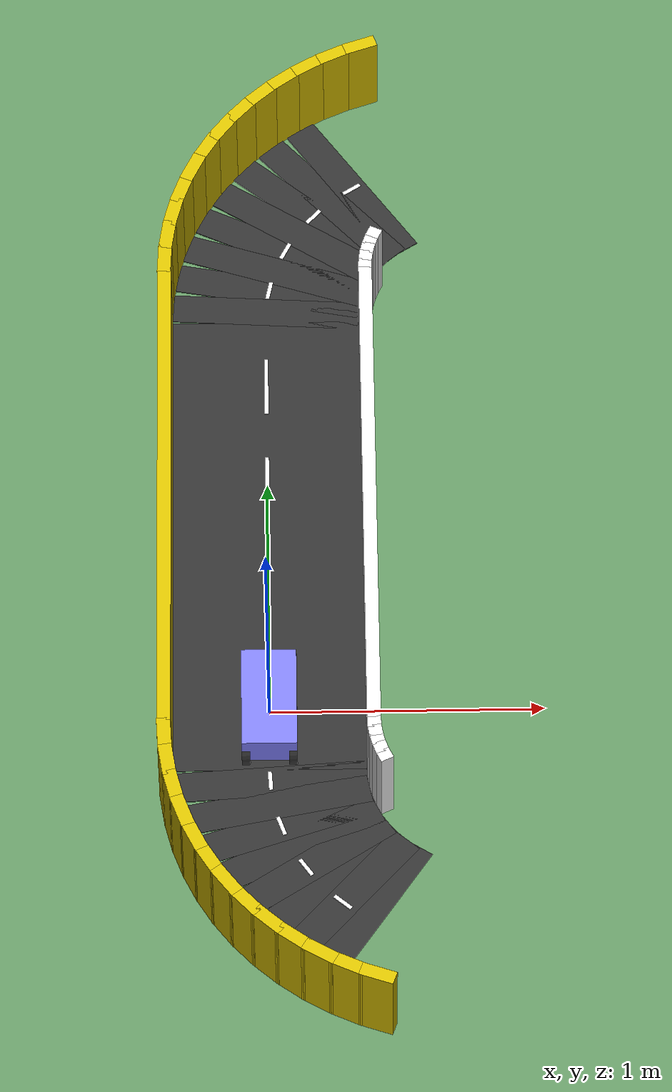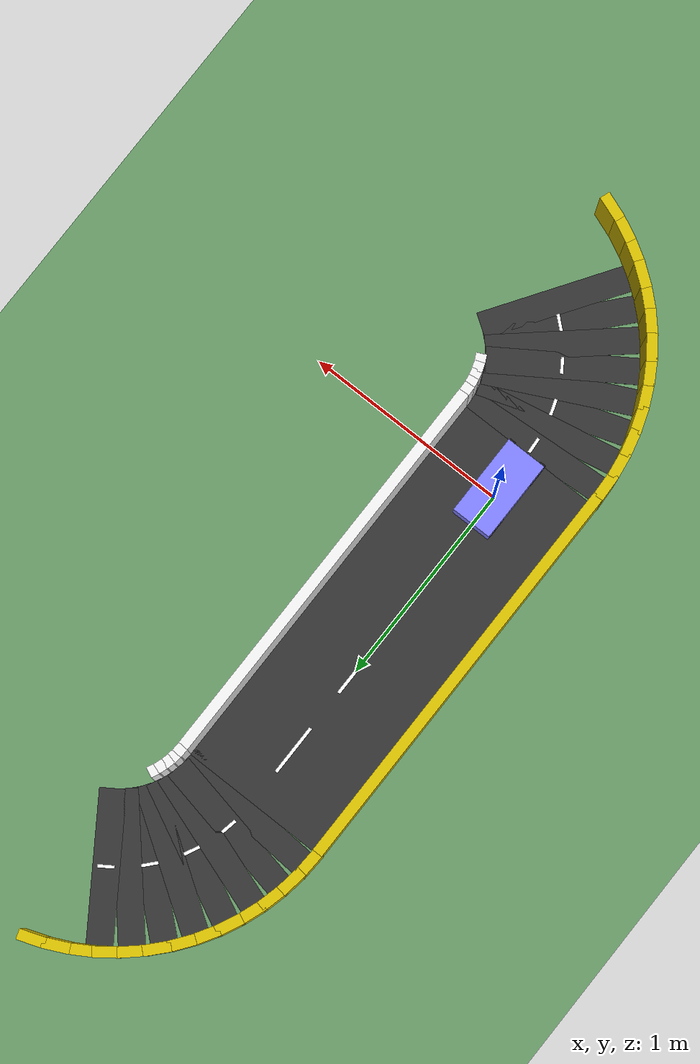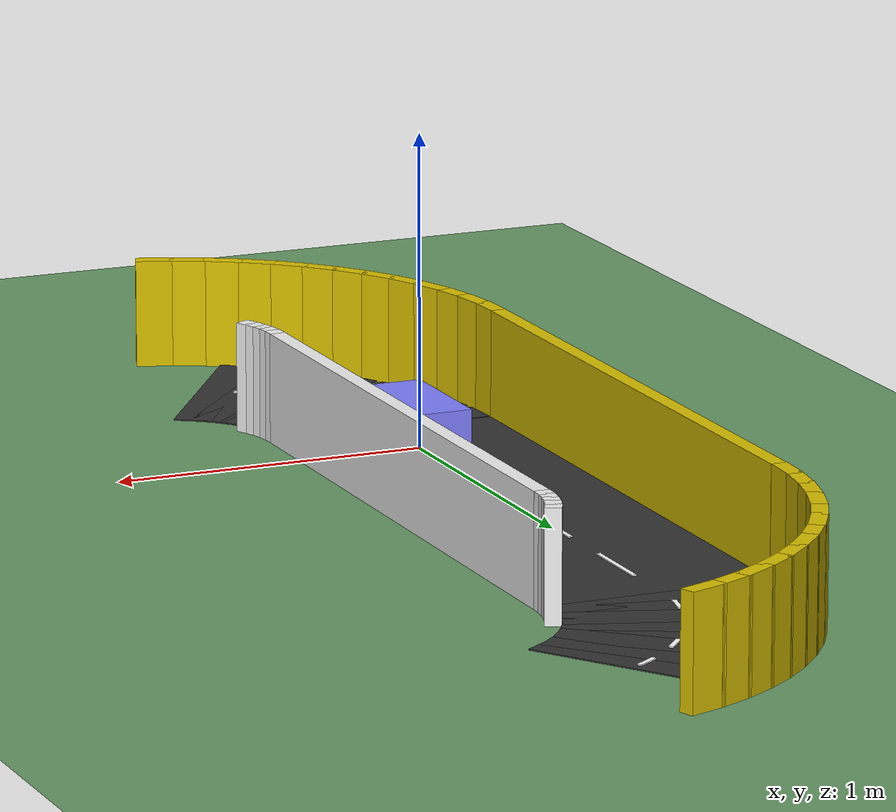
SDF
<sdf version="1.6">
 <world name="city_track">
  <model name="ground_plane">
   <static>true</static>
   <link name="link">
    <collision name="collision">
     <geometry><plane><normal>0 0 1</normal><size>20 20</size></plane></geometry>
     <surface><friction><ode><mu>50</mu><mu2>50</mu2></ode></friction></surface>
    </collision>
    <visual name="visual">
     <geometry><plane><normal>0 0 1</normal><size>20 20</size></plane></geometry>
     <material><ambient>0.4 0.6 0.4 1</ambient><diffuse>0.4 0.6 0.4 1</diffuse></material>
    </visual>
   </link>
  </model>
  <model name="road_left">
   <static>true</static>
   <pose>0.000000 0.750000 0.003000 0 0 0.000000</pose>
   <link name="link">
    <visual name="visual">
     <geometry><box><size>0.700000 2.000000 0.004000</size></box></geometry>
     <material><ambient>0.2 0.2 0.2 1</ambient><diffuse>0.2 0.2 0.2 1</diffuse></material>
    </visual>
   </link>
  </model>
  <model name="road_corner_tl_04">
   <static>true</static>
   <pose>0.333322 2.373602 0.003000 0 0 3.730641</pose>
   <link name="link">
    <visual name="visual">
     <geometry><box><size>0.122718 0.700000 0.004000</size></box></geometry>
     <material><ambient>0.2 0.2 0.2 1</ambient><diffuse>0.2 0.2 0.2 1</diffuse></material>
    </visual>
   </link>
  </model>
  <model name="road_corner_tl_05">
   <static>true</static>
   <pose>0.255491 2.313880 0.003000 0 0 3.861541</pose>
   <link name="link">
    <visual name="visual">
     <geometry><box><size>0.122718 0.700000 0.004000</size></box></geometry>
     <material><ambient>0.2 0.2 0.2 1</ambient><diffuse>0.2 0.2 0.2 1</diffuse></material>
    </visual>
   </link>
  </model>
  <model name="road_corner_tl_06">
   <static>true</static>
   <pose>0.186120 2.244509 0.003000 0 0 3.992441</pose>
   <link name="link">
    <visual name="visual">
     <geometry><box><size>0.122718 0.700000 0.004000</size></box></geometry>
     <material><ambient>0.2 0.2 0.2 1</ambient><diffuse>0.2 0.2 0.2 1</diffuse></material>
    </visual>
   </link>
  </model>
  <model name="road_corner_tl_07">
   <static>true</static>
   <pose>0.126398 2.166678 0.003000 0 0 4.123340</pose>
   <link name="link">
    <visual name="visual">
     <geometry><box><size>0.122718 0.700000 0.004000</size></box></geometry>
     <material><ambient>0.2 0.2 0.2 1</ambient><diffuse>0.2 0.2 0.2 1</diffuse></material>
    </visual>
   </link>
  </model>
  <model name="road_corner_tl_08">
   <static>true</static>
   <pose>0.077345 2.081717 0.003000 0 0 4.254240</pose>
   <link name="link">
    <visual name="visual">
     <geometry><box><size>0.122718 0.700000 0.004000</size></box></geometry>
     <material><ambient>0.2 0.2 0.2 1</ambient><diffuse>0.2 0.2 0.2 1</diffuse></material>
    </visual>
   </link>
  </model>
  <model name="road_corner_tl_09">
   <static>true</static>
   <pose>0.039802 1.991080 0.003000 0 0 4.385140</pose>
   <link name="link">
    <visual name="visual">
     <geometry><box><size>0.122718 0.700000 0.004000</size></box></geometry>
     <material><ambient>0.2 0.2 0.2 1</ambient><diffuse>0.2 0.2 0.2 1</diffuse></material>
    </visual>
   </link>
  </model>
  <model name="road_corner_tl_10">
   <static>true</static>
   <pose>0.014411 1.896318 0.003000 0 0 4.516039</pose>
   <link name="link">
    <visual name="visual">
     <geometry><box><size>0.122718 0.700000 0.004000</size></box></geometry>
     <material><ambient>0.2 0.2 0.2 1</ambient><diffuse>0.2 0.2 0.2 1</diffuse></material>
    </visual>
   </link>
  </model>
  <model name="road_corner_tl_11">
   <static>true</static>
   <pose>0.001606 1.799052 0.003000 0 0 4.646939</pose>
   <link name="link">
    <visual name="visual">
     <geometry><box><size>0.122718 0.700000 0.004000</size></box></geometry>
     <material><ambient>0.2 0.2 0.2 1</ambient><diffuse>0.2 0.2 0.2 1</diffuse></material>
    </visual>
   </link>
  </model>
  <model name="road_corner_bl_00">
   <static>true</static>
   <pose>0.001606 -0.299052 0.003000 0 0 4.777839</pose>
   <link name="link">
    <visual name="visual">
     <geometry><box><size>0.122718 0.700000 0.004000</size></box></geometry>
     <material><ambient>0.2 0.2 0.2 1</ambient><diffuse>0.2 0.2 0.2 1</diffuse></material>
    </visual>
   </link>
  </model>
  <model name="road_corner_bl_01">
   <static>true</static>
   <pose>0.014411 -0.396318 0.003000 0 0 4.908739</pose>
   <link name="link">
    <visual name="visual">
     <geometry><box><size>0.122718 0.700000 0.004000</size></box></geometry>
     <material><ambient>0.2 0.2 0.2 1</ambient><diffuse>0.2 0.2 0.2 1</diffuse></material>
    </visual>
   </link>
  </model>
  <model name="road_corner_bl_02">
   <static>true</static>
   <pose>0.039802 -0.491080 0.003000 0 0 5.039638</pose>
   <link name="link">
    <visual name="visual">
     <geometry><box><size>0.122718 0.700000 0.004000</size></box></geometry>
     <material><ambient>0.2 0.2 0.2 1</ambient><diffuse>0.2 0.2 0.2 1</diffuse></material>
    </visual>
   </link>
  </model>
  <model name="road_corner_bl_03">
   <static>true</static>
   <pose>0.077345 -0.581717 0.003000 0 0 5.170538</pose>
   <link name="link">
    <visual name="visual">
     <geometry><box><size>0.122718 0.700000 0.004000</size></box></geometry>
     <material><ambient>0.2 0.2 0.2 1</ambient><diffuse>0.2 0.2 0.2 1</diffuse></material>
    </visual>
   </link>
  </model>
  <model name="road_corner_bl_04">
   <static>true</static>
   <pose>0.126398 -0.666678 0.003000 0 0 5.301438</pose>
   <link name="link">
    <visual name="visual">
     <geometry><box><size>0.122718 0.700000 0.004000</size></box></geometry>
     <material><ambient>0.2 0.2 0.2 1</ambient><diffuse>0.2 0.2 0.2 1</diffuse></material>
    </visual>
   </link>
  </model>
  <model name="road_corner_bl_05">
   <static>true</static>
   <pose>0.186120 -0.744509 0.003000 0 0 5.432337</pose>
   <link name="link">
    <visual name="visual">
     <geometry><box><size>0.122718 0.700000 0.004000</size></box></geometry>
     <material><ambient>0.2 0.2 0.2 1</ambient><diffuse>0.2 0.2 0.2 1</diffuse></material>
    </visual>
   </link>
  </model>
  <model name="road_corner_bl_06">
   <static>true</static>
   <pose>0.255491 -0.813880 0.003000 0 0 5.563237</pose>
   <link name="link">
    <visual name="visual">
     <geometry><box><size>0.122718 0.700000 0.004000</size></box></geometry>
     <material><ambient>0.2 0.2 0.2 1</ambient><diffuse>0.2 0.2 0.2 1</diffuse></material>
    </visual>
   </link>
  </model>
  <model name="road_corner_bl_07">
   <static>true</static>
   <pose>0.333322 -0.873602 0.003000 0 0 5.694137</pose>
   <link name="link">
    <visual name="visual">
     <geometry><box><size>0.122718 0.700000 0.004000</size></box></geometry>
     <material><ambient>0.2 0.2 0.2 1</ambient><diffuse>0.2 0.2 0.2 1</diffuse></material>
    </visual>
   </link>
  </model>
  <model name="centerline_left_0">
   <static>true</static>
   <pose>0.000000 0.050000 0.008000 0 0 0.000000</pose>
   <link name="link">
    <visual name="visual">
     <geometry><box><size>0.015000 0.250000 0.004000</size></box></geometry>
     <material><ambient>1 1 1 1</ambient><diffuse>1 1 1 1</diffuse></material>
    </visual>
   </link>
  </model>
  <model name="centerline_left_1">
   <static>true</static>
   <pose>0.000000 0.500000 0.008000 0 0 0.000000</pose>
   <link name="link">
    <visual name="visual">
     <geometry><box><size>0.015000 0.250000 0.004000</size></box></geometry>
     <material><ambient>1 1 1 1</ambient><diffuse>1 1 1 1</diffuse></material>
    </visual>
   </link>
  </model>
  <model name="centerline_left_2">
   <static>true</static>
   <pose>0.000000 1.000000 0.008000 0 0 0.000000</pose>
   <link name="link">
    <visual name="visual">
     <geometry><box><size>0.015000 0.250000 0.004000</size></box></geometry>
     <material><ambient>1 1 1 1</ambient><diffuse>1 1 1 1</diffuse></material>
    </visual>
   </link>
  </model>
  <model name="centerline_left_3">
   <static>true</static>
   <pose>0.000000 1.450000 0.008000 0 0 0.000000</pose>
   <link name="link">
    <visual name="visual">
     <geometry><box><size>0.015000 0.250000 0.004000</size></box></geometry>
     <material><ambient>1 1 1 1</ambient><diffuse>1 1 1 1</diffuse></material>
    </visual>
   </link>
  </model>
  <model name="centerline_road_corner_tl_04">
   <static>true</static>
   <pose>0.333322 2.373602 0.010000 0 0 3.730641</pose>
   <link name="link">
    <visual name="visual">
     <geometry><box><size>0.078540 0.015000 0.004000</size></box></geometry>
     <material><ambient>1 1 1 1</ambient><diffuse>1 1 1 1</diffuse></material>
    </visual>
   </link>
  </model>
  <model name="centerline_road_corner_tl_06">
   <static>true</static>
   <pose>0.186120 2.244509 0.010000 0 0 3.992441</pose>
   <link name="link">
    <visual name="visual">
     <geometry><box><size>0.078540 0.015000 0.004000</size></box></geometry>
     <material><ambient>1 1 1 1</ambient><diffuse>1 1 1 1</diffuse></material>
    </visual>
   </link>
  </model>
  <model name="centerline_road_corner_tl_08">
   <static>true</static>
   <pose>0.077345 2.081717 0.010000 0 0 4.254240</pose>
   <link name="link">
    <visual name="visual">
     <geometry><box><size>0.078540 0.015000 0.004000</size></box></geometry>
     <material><ambient>1 1 1 1</ambient><diffuse>1 1 1 1</diffuse></material>
    </visual>
   </link>
  </model>
  <model name="centerline_road_corner_tl_10">
   <static>true</static>
   <pose>0.014411 1.896318 0.010000 0 0 4.516039</pose>
   <link name="link">
    <visual name="visual">
     <geometry><box><size>0.078540 0.015000 0.004000</size></box></geometry>
     <material><ambient>1 1 1 1</ambient><diffuse>1 1 1 1</diffuse></material>
    </visual>
   </link>
  </model>
  <model name="centerline_road_corner_bl_00">
   <static>true</static>
   <pose>0.001606 -0.299052 0.010000 0 0 4.777839</pose>
   <link name="link">
    <visual name="visual">
     <geometry><box><size>0.078540 0.015000 0.004000</size></box></geometry>
     <material><ambient>1 1 1 1</ambient><diffuse>1 1 1 1</diffuse></material>
    </visual>
   </link>
  </model>
  <model name="centerline_road_corner_bl_02">
   <static>true</static>
   <pose>0.039802 -0.491080 0.010000 0 0 5.039638</pose>
   <link name="link">
    <visual name="visual">
     <geometry><box><size>0.078540 0.015000 0.004000</size></box></geometry>
     <material><ambient>1 1 1 1</ambient><diffuse>1 1 1 1</diffuse></material>
    </visual>
   </link>
  </model>
  <model name="centerline_road_corner_bl_04">
   <static>true</static>
   <pose>0.126398 -0.666678 0.010000 0 0 5.301438</pose>
   <link name="link">
    <visual name="visual">
     <geometry><box><size>0.078540 0.015000 0.004000</size></box></geometry>
     <material><ambient>1 1 1 1</ambient><diffuse>1 1 1 1</diffuse></material>
    </visual>
   </link>
  </model>
  <model name="centerline_road_corner_bl_06">
   <static>true</static>
   <pose>0.255491 -0.813880 0.010000 0 0 5.563237</pose>
   <link name="link">
    <visual name="visual">
     <geometry><box><size>0.078540 0.015000 0.004000</size></box></geometry>
     <material><ambient>1 1 1 1</ambient><diffuse>1 1 1 1</diffuse></material>
    </visual>
   </link>
  </model>
  <model name="outer_wall_left">
   <static>true</static>
   <pose>-0.375000 0.750000 0.175000 0 0 0.000000</pose>
   <link name="link">
    <collision name="collision">
     <geometry><box><size>0.050000 2.000000 0.350000</size></box></geometry>
    </collision>
    <visual name="visual">
     <geometry><box><size>0.050000 2.000000 0.350000</size></box></geometry>
     <material><ambient>0.85 0.75 0.0 1</ambient><diffuse>0.85 0.75 0.0 1</diffuse></material>
    </visual>
   </link>
  </model>
  <model name="inner_wall_left">
   <static>true</static>
   <pose>0.375000 0.750000 0.175000 0 0 0.000000</pose>
   <link name="link">
    <collision name="collision">
     <geometry><box><size>0.050000 2.000000 0.350000</size></box></geometry>
    </collision>
    <visual name="visual">
     <geometry><box><size>0.050000 2.000000 0.350000</size></box></geometry>
     <material><ambient>0.95 0.95 0.95 1</ambient><diffuse>0.95 0.95 0.95 1</diffuse></material>
    </visual>
   </link>
  </model>
  <model name="outer_wall_corner_tl_03">
   <static>true</static>
   <pose>0.370999 2.809237 0.175000 0 0 3.485204</pose>
   <link name="link">
    <collision name="collision">
     <geometry><box><size>0.127014 0.050000 0.350000</size></box></geometry>
    </collision>
    <visual name="visual">
     <geometry><box><size>0.127014 0.050000 0.350000</size></box></geometry>
     <material><ambient>0.85 0.75 0.0 1</ambient><diffuse>0.85 0.75 0.0 1</diffuse></material>
    </visual>
   </link>
  </model>
  <model name="outer_wall_corner_tl_04">
   <static>true</static>
   <pose>0.269000 2.766988 0.175000 0 0 3.583379</pose>
   <link name="link">
    <collision name="collision">
     <geometry><box><size>0.127014 0.050000 0.350000</size></box></geometry>
    </collision>
    <visual name="visual">
     <geometry><box><size>0.127014 0.050000 0.350000</size></box></geometry>
     <material><ambient>0.85 0.75 0.0 1</ambient><diffuse>0.85 0.75 0.0 1</diffuse></material>
    </visual>
   </link>
  </model>
  <model name="outer_wall_corner_tl_05">
   <static>true</static>
   <pose>0.171635 2.714945 0.175000 0 0 3.681554</pose>
   <link name="link">
    <collision name="collision">
     <geometry><box><size>0.127014 0.050000 0.350000</size></box></geometry>
    </collision>
    <visual name="visual">
     <geometry><box><size>0.127014 0.050000 0.350000</size></box></geometry>
     <material><ambient>0.85 0.75 0.0 1</ambient><diffuse>0.85 0.75 0.0 1</diffuse></material>
    </visual>
   </link>
  </model>
  <model name="outer_wall_corner_tl_06">
   <static>true</static>
   <pose>0.079838 2.653608 0.175000 0 0 3.779729</pose>
   <link name="link">
    <collision name="collision">
     <geometry><box><size>0.127014 0.050000 0.350000</size></box></geometry>
    </collision>
    <visual name="visual">
     <geometry><box><size>0.127014 0.050000 0.350000</size></box></geometry>
     <material><ambient>0.85 0.75 0.0 1</ambient><diffuse>0.85 0.75 0.0 1</diffuse></material>
    </visual>
   </link>
  </model>
  <model name="outer_wall_corner_tl_07">
   <static>true</static>
   <pose>-0.005504 2.583570 0.175000 0 0 3.877903</pose>
   <link name="link">
    <collision name="collision">
     <geometry><box><size>0.127014 0.050000 0.350000</size></box></geometry>
    </collision>
    <visual name="visual">
     <geometry><box><size>0.127014 0.050000 0.350000</size></box></geometry>
     <material><ambient>0.85 0.75 0.0 1</ambient><diffuse>0.85 0.75 0.0 1</diffuse></material>
    </visual>
   </link>
  </model>
  <model name="outer_wall_corner_tl_08">
   <static>true</static>
   <pose>-0.083570 2.505504 0.175000 0 0 3.976078</pose>
   <link name="link">
    <collision name="collision">
     <geometry><box><size>0.127014 0.050000 0.350000</size></box></geometry>
    </collision>
    <visual name="visual">
     <geometry><box><size>0.127014 0.050000 0.350000</size></box></geometry>
     <material><ambient>0.85 0.75 0.0 1</ambient><diffuse>0.85 0.75 0.0 1</diffuse></material>
    </visual>
   </link>
  </model>
  <model name="outer_wall_corner_tl_09">
   <static>true</static>
   <pose>-0.153608 2.420162 0.175000 0 0 4.074253</pose>
   <link name="link">
    <collision name="collision">
     <geometry><box><size>0.127014 0.050000 0.350000</size></box></geometry>
    </collision>
    <visual name="visual">
     <geometry><box><size>0.127014 0.050000 0.350000</size></box></geometry>
     <material><ambient>0.85 0.75 0.0 1</ambient><diffuse>0.85 0.75 0.0 1</diffuse></material>
    </visual>
   </link>
  </model>
  <model name="outer_wall_corner_tl_10">
   <static>true</static>
   <pose>-0.214945 2.328365 0.175000 0 0 4.172428</pose>
   <link name="link">
    <collision name="collision">
     <geometry><box><size>0.127014 0.050000 0.350000</size></box></geometry>
    </collision>
    <visual name="visual">
     <geometry><box><size>0.127014 0.050000 0.350000</size></box></geometry>
     <material><ambient>0.85 0.75 0.0 1</ambient><diffuse>0.85 0.75 0.0 1</diffuse></material>
    </visual>
   </link>
  </model>
  <model name="outer_wall_corner_tl_11">
   <static>true</static>
   <pose>-0.266988 2.231000 0.175000 0 0 4.270603</pose>
   <link name="link">
    <collision name="collision">
     <geometry><box><size>0.127014 0.050000 0.350000</size></box></geometry>
    </collision>
    <visual name="visual">
     <geometry><box><size>0.127014 0.050000 0.350000</size></box></geometry>
     <material><ambient>0.85 0.75 0.0 1</ambient><diffuse>0.85 0.75 0.0 1</diffuse></material>
    </visual>
   </link>
  </model>
  <model name="inner_wall_corner_tl_11">
   <static>true</static>
   <pose>0.411004 1.910333 0.175000 0 0 4.270603</pose>
   <link name="link">
    <collision name="collision">
     <geometry><box><size>0.044179 0.050000 0.350000</size></box></geometry>
    </collision>
    <visual name="visual">
     <geometry><box><size>0.044179 0.050000 0.350000</size></box></geometry>
     <material><ambient>0.95 0.95 0.95 1</ambient><diffuse>0.95 0.95 0.95 1</diffuse></material>
    </visual>
   </link>
  </model>
  <model name="outer_wall_corner_tl_12">
   <static>true</static>
   <pose>-0.309237 2.129001 0.175000 0 0 4.368777</pose>
   <link name="link">
    <collision name="collision">
     <geometry><box><size>0.127014 0.050000 0.350000</size></box></geometry>
    </collision>
    <visual name="visual">
     <geometry><box><size>0.127014 0.050000 0.350000</size></box></geometry>
     <material><ambient>0.85 0.75 0.0 1</ambient><diffuse>0.85 0.75 0.0 1</diffuse></material>
    </visual>
   </link>
  </model>
  <model name="inner_wall_corner_tl_12">
   <static>true</static>
   <pose>0.396921 1.876334 0.175000 0 0 4.368777</pose>
   <link name="link">
    <collision name="collision">
     <geometry><box><size>0.044179 0.050000 0.350000</size></box></geometry>
    </collision>
    <visual name="visual">
     <geometry><box><size>0.044179 0.050000 0.350000</size></box></geometry>
     <material><ambient>0.95 0.95 0.95 1</ambient><diffuse>0.95 0.95 0.95 1</diffuse></material>
    </visual>
   </link>
  </model>
  <model name="outer_wall_corner_tl_13">
   <static>true</static>
   <pose>-0.341285 2.023353 0.175000 0 0 4.466952</pose>
   <link name="link">
    <collision name="collision">
     <geometry><box><size>0.127014 0.050000 0.350000</size></box></geometry>
    </collision>
    <visual name="visual">
     <geometry><box><size>0.127014 0.050000 0.350000</size></box></geometry>
     <material><ambient>0.85 0.75 0.0 1</ambient><diffuse>0.85 0.75 0.0 1</diffuse></material>
    </visual>
   </link>
  </model>
  <model name="inner_wall_corner_tl_13">
   <static>true</static>
   <pose>0.386238 1.841118 0.175000 0 0 4.466952</pose>
   <link name="link">
    <collision name="collision">
     <geometry><box><size>0.044179 0.050000 0.350000</size></box></geometry>
    </collision>
    <visual name="visual">
     <geometry><box><size>0.044179 0.050000 0.350000</size></box></geometry>
     <material><ambient>0.95 0.95 0.95 1</ambient><diffuse>0.95 0.95 0.95 1</diffuse></material>
    </visual>
   </link>
  </model>
  <model name="outer_wall_corner_tl_14">
   <static>true</static>
   <pose>-0.362824 1.915072 0.175000 0 0 4.565127</pose>
   <link name="link">
    <collision name="collision">
     <geometry><box><size>0.127014 0.050000 0.350000</size></box></geometry>
    </collision>
    <visual name="visual">
     <geometry><box><size>0.127014 0.050000 0.350000</size></box></geometry>
     <material><ambient>0.85 0.75 0.0 1</ambient><diffuse>0.85 0.75 0.0 1</diffuse></material>
    </visual>
   </link>
  </model>
  <model name="inner_wall_corner_tl_14">
   <static>true</static>
   <pose>0.379059 1.805024 0.175000 0 0 4.565127</pose>
   <link name="link">
    <collision name="collision">
     <geometry><box><size>0.044179 0.050000 0.350000</size></box></geometry>
    </collision>
    <visual name="visual">
     <geometry><box><size>0.044179 0.050000 0.350000</size></box></geometry>
     <material><ambient>0.95 0.95 0.95 1</ambient><diffuse>0.95 0.95 0.95 1</diffuse></material>
    </visual>
   </link>
  </model>
  <model name="outer_wall_corner_tl_15">
   <static>true</static>
   <pose>-0.373645 1.805201 0.175000 0 0 4.663302</pose>
   <link name="link">
    <collision name="collision">
     <geometry><box><size>0.127014 0.050000 0.350000</size></box></geometry>
    </collision>
    <visual name="visual">
     <geometry><box><size>0.127014 0.050000 0.350000</size></box></geometry>
     <material><ambient>0.85 0.75 0.0 1</ambient><diffuse>0.85 0.75 0.0 1</diffuse></material>
    </visual>
   </link>
  </model>
  <model name="inner_wall_corner_tl_15">
   <static>true</static>
   <pose>0.375452 1.768400 0.175000 0 0 4.663302</pose>
   <link name="link">
    <collision name="collision">
     <geometry><box><size>0.044179 0.050000 0.350000</size></box></geometry>
    </collision>
    <visual name="visual">
     <geometry><box><size>0.044179 0.050000 0.350000</size></box></geometry>
     <material><ambient>0.95 0.95 0.95 1</ambient><diffuse>0.95 0.95 0.95 1</diffuse></material>
    </visual>
   </link>
  </model>
  <model name="outer_wall_corner_bl_00">
   <static>true</static>
   <pose>-0.373645 -0.305201 0.175000 0 0 4.761476</pose>
   <link name="link">
    <collision name="collision">
     <geometry><box><size>0.127014 0.050000 0.350000</size></box></geometry>
    </collision>
    <visual name="visual">
     <geometry><box><size>0.127014 0.050000 0.350000</size></box></geometry>
     <material><ambient>0.85 0.75 0.0 1</ambient><diffuse>0.85 0.75 0.0 1</diffuse></material>
    </visual>
   </link>
  </model>
  <model name="inner_wall_corner_bl_00">
   <static>true</static>
   <pose>0.375452 -0.268400 0.175000 0 0 4.761476</pose>
   <link name="link">
    <collision name="collision">
     <geometry><box><size>0.044179 0.050000 0.350000</size></box></geometry>
    </collision>
    <visual name="visual">
     <geometry><box><size>0.044179 0.050000 0.350000</size></box></geometry>
     <material><ambient>0.95 0.95 0.95 1</ambient><diffuse>0.95 0.95 0.95 1</diffuse></material>
    </visual>
   </link>
  </model>
  <model name="outer_wall_corner_bl_01">
   <static>true</static>
   <pose>-0.362824 -0.415072 0.175000 0 0 4.859651</pose>
   <link name="link">
    <collision name="collision">
     <geometry><box><size>0.127014 0.050000 0.350000</size></box></geometry>
    </collision>
    <visual name="visual">
     <geometry><box><size>0.127014 0.050000 0.350000</size></box></geometry>
     <material><ambient>0.85 0.75 0.0 1</ambient><diffuse>0.85 0.75 0.0 1</diffuse></material>
    </visual>
   </link>
  </model>
  <model name="inner_wall_corner_bl_01">
   <static>true</static>
   <pose>0.379059 -0.305024 0.175000 0 0 4.859651</pose>
   <link name="link">
    <collision name="collision">
     <geometry><box><size>0.044179 0.050000 0.350000</size></box></geometry>
    </collision>
    <visual name="visual">
     <geometry><box><size>0.044179 0.050000 0.350000</size></box></geometry>
     <material><ambient>0.95 0.95 0.95 1</ambient><diffuse>0.95 0.95 0.95 1</diffuse></material>
    </visual>
   </link>
  </model>
  <model name="outer_wall_corner_bl_02">
   <static>true</static>
   <pose>-0.341285 -0.523353 0.175000 0 0 4.957826</pose>
   <link name="link">
    <collision name="collision">
     <geometry><box><size>0.127014 0.050000 0.350000</size></box></geometry>
    </collision>
    <visual name="visual">
     <geometry><box><size>0.127014 0.050000 0.350000</size></box></geometry>
     <material><ambient>0.85 0.75 0.0 1</ambient><diffuse>0.85 0.75 0.0 1</diffuse></material>
    </visual>
   </link>
  </model>
  <model name="inner_wall_corner_bl_02">
   <static>true</static>
   <pose>0.386238 -0.341118 0.175000 0 0 4.957826</pose>
   <link name="link">
    <collision name="collision">
     <geometry><box><size>0.044179 0.050000 0.350000</size></box></geometry>
    </collision>
    <visual name="visual">
     <geometry><box><size>0.044179 0.050000 0.350000</size></box></geometry>
     <material><ambient>0.95 0.95 0.95 1</ambient><diffuse>0.95 0.95 0.95 1</diffuse></material>
    </visual>
   </link>
  </model>
  <model name="outer_wall_corner_bl_03">
   <static>true</static>
   <pose>-0.309237 -0.629001 0.175000 0 0 5.056001</pose>
   <link name="link">
    <collision name="collision">
     <geometry><box><size>0.127014 0.050000 0.350000</size></box></geometry>
    </collision>
    <visual name="visual">
     <geometry><box><size>0.127014 0.050000 0.350000</size></box></geometry>
     <material><ambient>0.85 0.75 0.0 1</ambient><diffuse>0.85 0.75 0.0 1</diffuse></material>
    </visual>
   </link>
  </model>
  <model name="inner_wall_corner_bl_03">
   <static>true</static>
   <pose>0.396921 -0.376334 0.175000 0 0 5.056001</pose>
   <link name="link">
    <collision name="collision">
     <geometry><box><size>0.044179 0.050000 0.350000</size></box></geometry>
    </collision>
    <visual name="visual">
     <geometry><box><size>0.044179 0.050000 0.350000</size></box></geometry>
     <material><ambient>0.95 0.95 0.95 1</ambient><diffuse>0.95 0.95 0.95 1</diffuse></material>
    </visual>
   </link>
  </model>
  <model name="outer_wall_corner_bl_04">
   <static>true</static>
   <pose>-0.266988 -0.731000 0.175000 0 0 5.154175</pose>
   <link name="link">
    <collision name="collision">
     <geometry><box><size>0.127014 0.050000 0.350000</size></box></geometry>
    </collision>
    <visual name="visual">
     <geometry><box><size>0.127014 0.050000 0.350000</size></box></geometry>
     <material><ambient>0.85 0.75 0.0 1</ambient><diffuse>0.85 0.75 0.0 1</diffuse></material>
    </visual>
   </link>
  </model>
  <model name="inner_wall_corner_bl_04">
   <static>true</static>
   <pose>0.411004 -0.410333 0.175000 0 0 5.154175</pose>
   <link name="link">
    <collision name="collision">
     <geometry><box><size>0.044179 0.050000 0.350000</size></box></geometry>
    </collision>
    <visual name="visual">
     <geometry><box><size>0.044179 0.050000 0.350000</size></box></geometry>
     <material><ambient>0.95 0.95 0.95 1</ambient><diffuse>0.95 0.95 0.95 1</diffuse></material>
    </visual>
   </link>
  </model>
  <model name="outer_wall_corner_bl_05">
   <static>true</static>
   <pose>-0.214945 -0.828365 0.175000 0 0 5.252350</pose>
   <link name="link">
    <collision name="collision">
     <geometry><box><size>0.127014 0.050000 0.350000</size></box></geometry>
    </collision>
    <visual name="visual">
     <geometry><box><size>0.127014 0.050000 0.350000</size></box></geometry>
     <material><ambient>0.85 0.75 0.0 1</ambient><diffuse>0.85 0.75 0.0 1</diffuse></material>
    </visual>
   </link>
  </model>
  <model name="outer_wall_corner_bl_06">
   <static>true</static>
   <pose>-0.153608 -0.920162 0.175000 0 0 5.350525</pose>
   <link name="link">
    <collision name="collision">
     <geometry><box><size>0.127014 0.050000 0.350000</size></box></geometry>
    </collision>
    <visual name="visual">
     <geometry><box><size>0.127014 0.050000 0.350000</size></box></geometry>
     <material><ambient>0.85 0.75 0.0 1</ambient><diffuse>0.85 0.75 0.0 1</diffuse></material>
    </visual>
   </link>
  </model>
  <model name="outer_wall_corner_bl_07">
   <static>true</static>
   <pose>-0.083570 -1.005504 0.175000 0 0 5.448700</pose>
   <link name="link">
    <collision name="collision">
     <geometry><box><size>0.127014 0.050000 0.350000</size></box></geometry>
    </collision>
    <visual name="visual">
     <geometry><box><size>0.127014 0.050000 0.350000</size></box></geometry>
     <material><ambient>0.85 0.75 0.0 1</ambient><diffuse>0.85 0.75 0.0 1</diffuse></material>
    </visual>
   </link>
  </model>
  <model name="outer_wall_corner_bl_08">
   <static>true</static>
   <pose>-0.005504 -1.083570 0.175000 0 0 5.546875</pose>
   <link name="link">
    <collision name="collision">
     <geometry><box><size>0.127014 0.050000 0.350000</size></box></geometry>
    </collision>
    <visual name="visual">
     <geometry><box><size>0.127014 0.050000 0.350000</size></box></geometry>
     <material><ambient>0.85 0.75 0.0 1</ambient><diffuse>0.85 0.75 0.0 1</diffuse></material>
    </visual>
   </link>
  </model>
  <model name="outer_wall_corner_bl_09">
   <static>true</static>
   <pose>0.079838 -1.153608 0.175000 0 0 5.645049</pose>
   <link name="link">
    <collision name="collision">
     <geometry><box><size>0.127014 0.050000 0.350000</size></box></geometry>
    </collision>
    <visual name="visual">
     <geometry><box><size>0.127014 0.050000 0.350000</size></box></geometry>
     <material><ambient>0.85 0.75 0.0 1</ambient><diffuse>0.85 0.75 0.0 1</diffuse></material>
    </visual>
   </link>
  </model>
  <model name="outer_wall_corner_bl_10">
   <static>true</static>
   <pose>0.171635 -1.214945 0.175000 0 0 5.743224</pose>
   <link name="link">
    <collision name="collision">
     <geometry><box><size>0.127014 0.050000 0.350000</size></box></geometry>
    </collision>
    <visual name="visual">
     <geometry><box><size>0.127014 0.050000 0.350000</size></box></geometry>
     <material><ambient>0.85 0.75 0.0 1</ambient><diffuse>0.85 0.75 0.0 1</diffuse></material>
    </visual>
   </link>
  </model>
  <model name="outer_wall_corner_bl_11">
   <static>true</static>
   <pose>0.269000 -1.266988 0.175000 0 0 5.841399</pose>
   <link name="link">
    <collision name="collision">
     <geometry><box><size>0.127014 0.050000 0.350000</size></box></geometry>
    </collision>
    <visual name="visual">
     <geometry><box><size>0.127014 0.050000 0.350000</size></box></geometry>
     <material><ambient>0.85 0.75 0.0 1</ambient><diffuse>0.85 0.75 0.0 1</diffuse></material>
    </visual>
   </link>
  </model>
  <model name="outer_wall_corner_bl_12">
   <static>true</static>
   <pose>0.370999 -1.309237 0.175000 0 0 5.939574</pose>
   <link name="link">
    <collision name="collision">
     <geometry><box><size>0.127014 0.050000 0.350000</size></box></geometry>
    </collision>
    <visual name="visual">
     <geometry><box><size>0.127014 0.050000 0.350000</size></box></geometry>
     <material><ambient>0.85 0.75 0.0 1</ambient><diffuse>0.85 0.75 0.0 1</diffuse></material>
    </visual>
   </link>
  </model>
  <model name="vehicle_blue">
   <pose>0.000000 0.000000 0.065 0 0 1.5708</pose>
   <link name="chassis">
    <pose>-0.030285 0 0.035 0 0 0</pose>
    <inertial>
     <mass>1.0</mass>
     <inertia><ixx>0.005</ixx><ixy>0</ixy><ixz>0</ixz><iyy>0.015</iyy><iyz>0</iyz><izz>0.018</izz></inertia>
    </inertial>
    <visual name="visual">
     <geometry><box><size>0.402284 0.2 0.113745</size></box></geometry>
     <material>
      <ambient>0.5 0.5 1.0 1</ambient>
      <diffuse>0.5 0.5 1.0 1</diffuse>
      <specular>0.0 0.0 1.0 1</specular>
     </material>
    </visual>
    <collision name="collision"><geometry><box><size>0.402284 0.2 0.113745</size></box></geometry></collision>
   </link>
   <link name="front_left_wheel">
    <pose>0.110857 0.085000 -0.005 -1.5707 0 0</pose>
    <inertial>
     <mass>0.05</mass>
     <inertia><ixx>0.00003</ixx><ixy>0</ixy><ixz>0</ixz><iyy>0.00003</iyy><iyz>0</iyz><izz>0.00005</izz></inertia>
    </inertial>
    <visual name="visual">
     <geometry><cylinder><length>0.03</length><radius>0.06</radius></cylinder></geometry>
     <material><ambient>0.2 0.2 0.2 1</ambient><diffuse>0.2 0.2 0.2 1</diffuse></material>
    </visual>
    <collision name="collision">
     <geometry><cylinder><length>0.03</length><radius>0.06</radius></cylinder></geometry>
     <surface><friction><ode><mu>1.2</mu><mu2>1.2</mu2><fdir1>0 0 1</fdir1></ode></friction></surface>
    </collision>
   </link>
   <link name="rear_left_wheel">
    <pose>-0.191428 0.085000 -0.005 -1.5707 0 0</pose>
    <inertial>
     <mass>0.05</mass>
     <inertia><ixx>0.00003</ixx><ixy>0</ixy><ixz>0</ixz><iyy>0.00003</iyy><iyz>0</iyz><izz>0.00005</izz></inertia>
    </inertial>
    <visual name="visual">
     <geometry><cylinder><length>0.03</length><radius>0.06</radius></cylinder></geometry>
     <material><ambient>0.2 0.2 0.2 1</ambient><diffuse>0.2 0.2 0.2 1</diffuse></material>
    </visual>
    <collision name="collision">
     <geometry><cylinder><length>0.03</length><radius>0.06</radius></cylinder></geometry>
     <surface><friction><ode><mu>1.2</mu><mu2>1.2</mu2><fdir1>0 0 1</fdir1></ode></friction></surface>
    </collision>
   </link>
   <link name="front_right_wheel">
    <pose>0.110856 -0.085000 -0.005 -1.5707 0 0</pose>
    <inertial>
     <mass>0.05</mass>
     <inertia><ixx>0.00003</ixx><ixy>0</ixy><ixz>0</ixz><iyy>0.00003</iyy><iyz>0</iyz><izz>0.00005</izz></inertia>
    </inertial>
    <visual name="visual">
     <geometry><cylinder><length>0.03</length><radius>0.06</radius></cylinder></geometry>
     <material><ambient>0.2 0.2 0.2 1</ambient><diffuse>0.2 0.2 0.2 1</diffuse></material>
    </visual>
    <collision name="collision">
     <geometry><cylinder><length>0.03</length><radius>0.06</radius></cylinder></geometry>
     <surface><friction><ode><mu>1.2</mu><mu2>1.2</mu2><fdir1>0 0 1</fdir1></ode></friction></surface>
    </collision>
   </link>
   <link name="rear_right_wheel">
    <pose>-0.191428 -0.085000 -0.005 -1.5707 0 0</pose>
    <inertial>
     <mass>0.05</mass>
     <inertia><ixx>0.00003</ixx><ixy>0</ixy><ixz>0</ixz><iyy>0.00003</iyy><iyz>0</iyz><izz>0.00005</izz></inertia>
    </inertial>
    <visual name="visual">
     <geometry><cylinder><length>0.03</length><radius>0.06</radius></cylinder></geometry>
     <material><ambient>0.2 0.2 0.2 1</ambient><diffuse>0.2 0.2 0.2 1</diffuse></material>
    </visual>
    <collision name="collision">
     <geometry><cylinder><length>0.03</length><radius>0.06</radius></cylinder></geometry>
     <surface><friction><ode><mu>1.2</mu><mu2>1.2</mu2><fdir1>0 0 1</fdir1></ode></friction></surface>
    </collision>
   </link>
   <link name="front_left_wheel_steering_link">
    <pose>0.110857 0.085000 0.004 0 0 0</pose>
    <inertial>
     <mass>0.02</mass>
     <inertia><ixx>0.00001</ixx><ixy>0</ixy><ixz>0</ixz><iyy>0.00001</iyy><iyz>0</iyz><izz>0.00001</izz></inertia>
    </inertial>
    <visual name="steering_link_visual">
     <geometry><cylinder><length>0.02</length><radius>0.01</radius></cylinder></geometry>
     <material><ambient>1 1 1 1</ambient><diffuse>1 1 1 1</diffuse></material>
    </visual>
   </link>
   <link name="front_right_wheel_steering_link">
    <pose>0.110857 -0.085000 0.004 0 0 0</pose>
    <inertial>
     <mass>0.02</mass>
     <inertia><ixx>0.00001</ixx><ixy>0</ixy><ixz>0</ixz><iyy>0.00001</iyy><iyz>0</iyz><izz>0.00001</izz></inertia>
    </inertial>
    <visual name="steering_link_visual">
     <geometry><cylinder><length>0.02</length><radius>0.01</radius></cylinder></geometry>
     <material><ambient>1 1 1 1</ambient><diffuse>1 1 1 1</diffuse></material>
    </visual>
   </link>
   <joint name="front_left_wheel_steering_joint" type="revolute">
    <child>front_left_wheel_steering_link</child>
    <parent>chassis</parent>
    <axis>
     <xyz>0 0 1</xyz>
     <limit><lower>-0.6</lower><upper>0.6</upper><velocity>1.0</velocity><effort>5</effort></limit>
     <use_parent_model_frame>1</use_parent_model_frame>
    </axis>
   </joint>
   <joint name="front_right_wheel_steering_joint" type="revolute">
    <parent>chassis</parent>
    <child>front_right_wheel_steering_link</child>
    <axis>
     <xyz>0 0 1</xyz>
     <limit><lower>-0.6</lower><upper>0.6</upper><velocity>1.0</velocity><effort>5</effort></limit>
     <use_parent_model_frame>1</use_parent_model_frame>
    </axis>
   </joint>
   <joint name="front_left_wheel_joint" type="revolute">
    <parent>front_left_wheel_steering_link</parent>
    <child>front_left_wheel</child>
    <axis><xyz>0 0 1</xyz><limit><lower>-1.79769e+308</lower><upper>1.79769e+308</upper></limit></axis>
   </joint>
   <joint name="front_right_wheel_joint" type="revolute">
    <parent>front_right_wheel_steering_link</parent>
    <child>front_right_wheel</child>
    <axis><xyz>0 0 1</xyz><limit><lower>-1.79769e+308</lower><upper>1.79769e+308</upper></limit></axis>
   </joint>
   <joint name="rear_left_wheel_joint" type="revolute">
    <parent>chassis</parent>
    <child>rear_left_wheel</child>
    <axis><xyz>0 0 1</xyz><limit><lower>-1.79769e+308</lower><upper>1.79769e+308</upper></limit></axis>
   </joint>
   <joint name="rear_right_wheel_joint" type="revolute">
    <parent>chassis</parent>
    <child>rear_right_wheel</child>
    <axis><xyz>0 0 1</xyz><limit><lower>-1.79769e+308</lower><upper>1.79769e+308</upper></limit></axis>
   </joint>
   <plugin filename="gz-sim-ackermann-steering-system" name="gz::sim::systems::AckermannSteering">
    <left_joint>front_left_wheel_joint</left_joint>
    <left_joint>rear_left_wheel_joint</left_joint>
    <right_joint>front_right_wheel_joint</right_joint>
    <right_joint>rear_right_wheel_joint</right_joint>
    <left_steering_joint>front_left_wheel_steering_joint</left_steering_joint>
    <right_steering_joint>front_right_wheel_steering_joint</right_steering_joint>
    <kingpin_width>0.17</kingpin_width>
    <steering_limit>0.55</steering_limit>
    <wheel_base>0.302284</wheel_base>
    <wheel_separation>0.17</wheel_separation>
    <wheel_radius>0.06</wheel_radius>
    <min_velocity>-1.5</min_velocity>
    <max_velocity>1.5</max_velocity>
    <min_acceleration>-1.0</min_acceleration>
    <max_acceleration>1.0</max_acceleration>
    <topic>/model/vehicle_blue/cmd_vel</topic>
    <odom_topic>/model/vehicle_blue/odometry</odom_topic>
    <tf_topic>/model/vehicle_blue/tf</tf_topic>
    <frame_id>odom</frame_id>
    <child_frame_id>vehicle_blue/chassis</child_frame_id>
    <odom_publish_frequency>50</odom_publish_frequency>
   </plugin>
   <plugin filename="gz-sim-joint-state-publisher-system" name="gz::sim::systems::JointStatePublisher"/>
  </model>
 </world>
</sdf>
